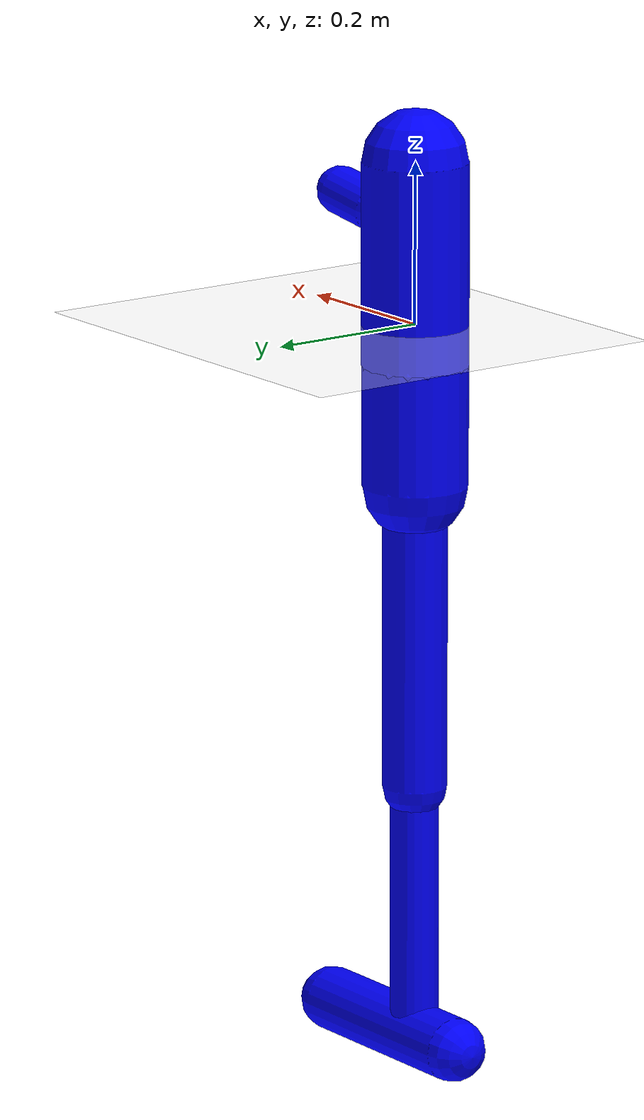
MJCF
<mujoco model="planar hopper">
  <include file="common/materials.xml"/>

  <default>
    <default class="hopper">
      <joint type="hinge" axis="0 1 0" limited="true" damping=".05" armature=".2"/>
      <geom type="capsule" material="self" conaffinity="0" contype="0"/>
      <site type="sphere" size="0.05" group="3"/>
    </default>
    <default class="free">
      <joint limited="false" damping="0" armature="0" stiffness="0"/>
    </default>
    <motor ctrllimited="false"/>
  </default>

  <asset>
    <texture type="skybox" builtin="gradient" rgb1="1 1 1" rgb2="1 1 1" width="800" height="800"/>
    <texture type="2d" name="groundplane" builtin="checker" mark="edge" rgb1="1 1 1" rgb2="1 1 1"
      markrgb="0 0 0" width="300" height="300"/>
    <material name="groundplane" texture="groundplane" texuniform="true" texrepeat="5 5" reflectance="0"/>
  </asset>

  <visual>
    <headlight diffuse=".8 .8 .8" ambient=".2 .2 .2" specular="1 1 1"/>
    <rgba force="1 0 0 1"/>
    <global azimuth="140" elevation="-20" offwidth="2560" offheight="2560"/>
    <map force="0.01"/>
    <scale forcewidth="0.3" contactwidth="0.5" contactheight="0.2"/>
    <quality shadowsize="8192"/>
  </visual>

  <option timestep="0.005" iterations="4" ls_iterations="10">
    <flag eulerdamp="disable"/>
  </option>

  <custom>
    <numeric data="6" name="max_contact_points"/>
    <numeric data="2" name="max_geom_pairs"/>
  </custom>

  <worldbody>
    <camera name="side_fixed" pos="3.5 -4.5 2.5" euler="70 0 0"/>
    <camera name="track" pos="0 -2.8 -0.5" euler="90 0 0" mode="trackcom"/>
    <camera name="back" pos="-2 -.2 1.2" xyaxes="0.2 -1 0 .5 0 2" mode="trackcom"/>
    <geom name="floor" type="plane" conaffinity="1" pos="49 0 0" size="50 1 .2" material="groundplane"/>
    <light name="light" pos="0 0 4" dir="0 0 -1" specular=".2 .2 .2" diffuse=".5 .5 .5" exponent="0.5" ambient="0.2 0.2 0.2" mode="trackcom"/>

    <body name="torso" pos="0 0 0" childclass="hopper">
      <joint name="rootx" type="slide" axis="1 0 0" class="free"/>
      <joint name="rootz" type="slide" axis="0 0 1" class="free"/>
      <joint name="rooty" type="hinge" axis="0 1 0" class="free"/>
      <geom name="torso" fromto="0 0 -.05 0 0 .2" size="0.0653"/>
      <geom name="nose" fromto=".08 0 .13 .15 0 .14" size="0.03"/>
      <body name="pelvis" pos="0 0 -.05">
        <joint name="waist" range="-30 30"/>
        <geom name="pelvis" fromto="0 0 0 0 0 -.15" size="0.065"/>
        <body name="thigh" pos="0 0 -.2">
          <joint name="hip" range="-170 10"/>
          <geom name="thigh" fromto="0 0 0 0 0 -.33" size="0.04"/>
          <body name="calf" pos="0 0 -.33">
            <joint name="knee" range="5 150"/>
            <geom name="calf" fromto="0 0 0 0 0 -.32" size="0.03"/>
            <body name="foot" pos="0 0 -.32">
              <joint name="ankle" range="-45 45"/>
              <geom name="foot" fromto="-.08 0 0 .17 0 0" size="0.04"/>
              <site name="touch_toe" pos=".17 0 0"/>
              <site name="touch_heel" pos="-.08 0 0"/>
            </body>
          </body>
        </body>
      </body>
    </body>
  </worldbody>

  <contact>
    <pair name="foot_floor" geom1="foot" geom2="floor" condim="3" friction="0.7 0.7"/>
  </contact>

  <sensor>
    <subtreelinvel name="torso_subtreelinvel" body="torso"/>
    <touch name="touch_toe" site="touch_toe"/>
    <touch name="touch_heel" site="touch_heel"/>
  </sensor>

  <actuator>
    <motor name="waist" joint="waist" gear="30"/>
    <motor name="hip" joint="hip" gear="40"/>
    <motor name="knee" joint="knee" gear="30"/>
    <motor name="ankle" joint="ankle" gear="10"/>
  </actuator>
</mujoco>

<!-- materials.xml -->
<!--
Common textures, colors and materials to be used throughout this suite. Some
materials such as xxx_highlight are activated on occurence of certain events,
for example receiving a positive reward.
-->
<mujoco>
  <asset>
    <texture name="grid" type="2d" builtin="checker" rgb1=".1 .2 .3" rgb2=".2 .3 .4" width="300" height="300" mark="edge" markrgb=".2 .3 .4"/>
    <material name="grid" texture="grid" texrepeat="1 1" texuniform="true" reflectance=".2"/>
    <material name="self" rgba="0 0 1 1"/>
    <material name="self_default" rgba=".7 .5 .3 1"/>
    <material name="self_highlight" rgba="0 .5 .3 1"/>
    <material name="effector" rgba=".7 .4 .2 1"/>
    <material name="effector_default" rgba=".7 .4 .2 1"/>
    <material name="effector_highlight" rgba="0 .5 .3 1"/>
    <material name="decoration" rgba=".3 .5 .7 1"/>
    <material name="eye" rgba="0 .2 1 1"/>
    <material name="target" rgba=".6 .3 .3 1"/>
    <material name="target_default" rgba=".6 .3 .3 1"/>
    <material name="target_highlight" rgba=".6 .3 .3 .4"/>
    <material name="site" rgba=".5 .5 .5 .3"/>
  </asset>
</mujoco>
